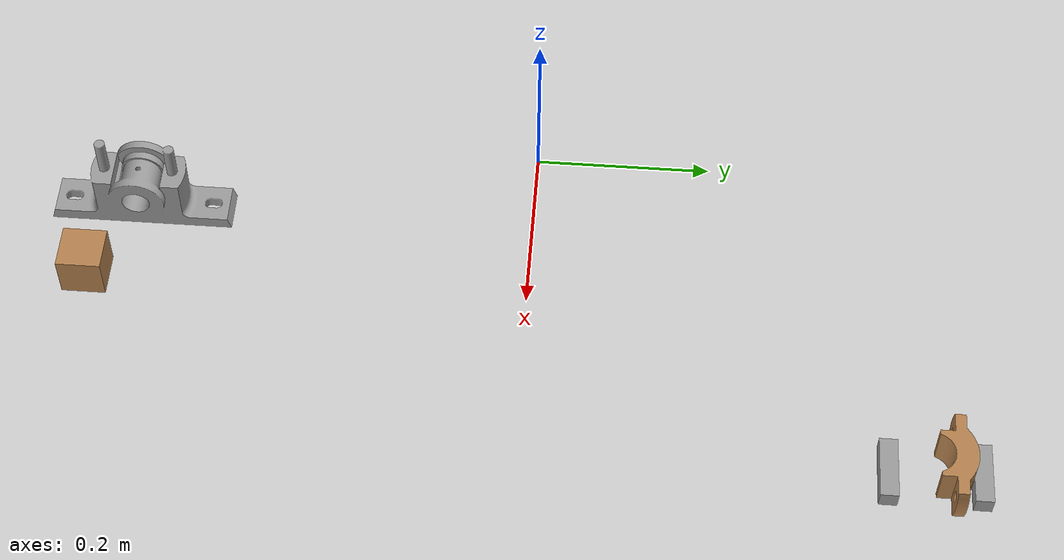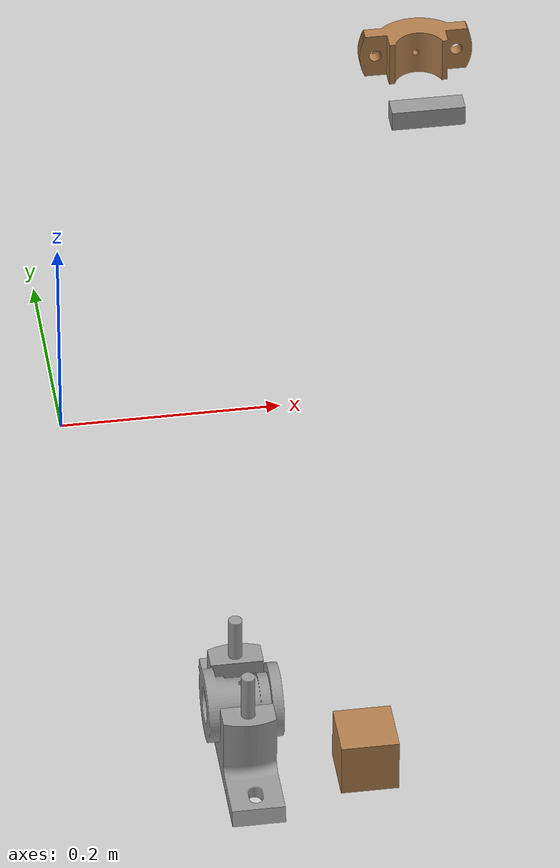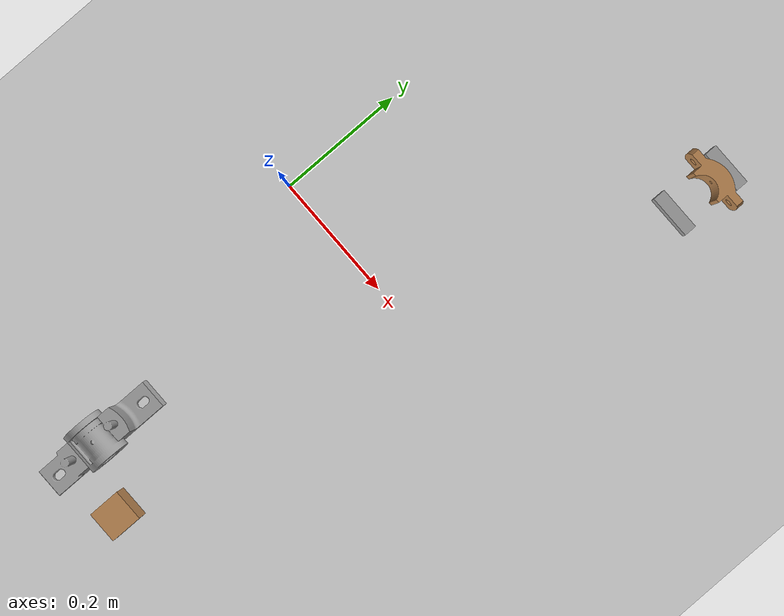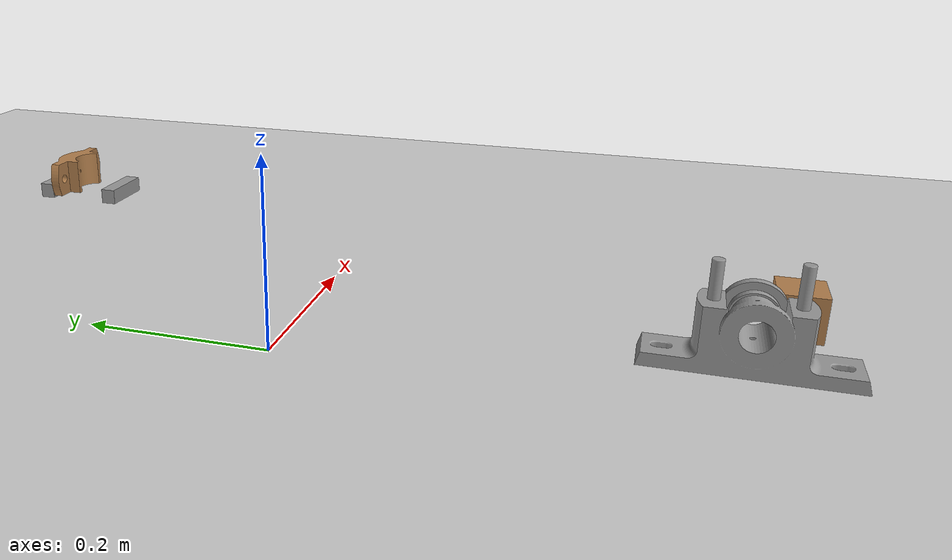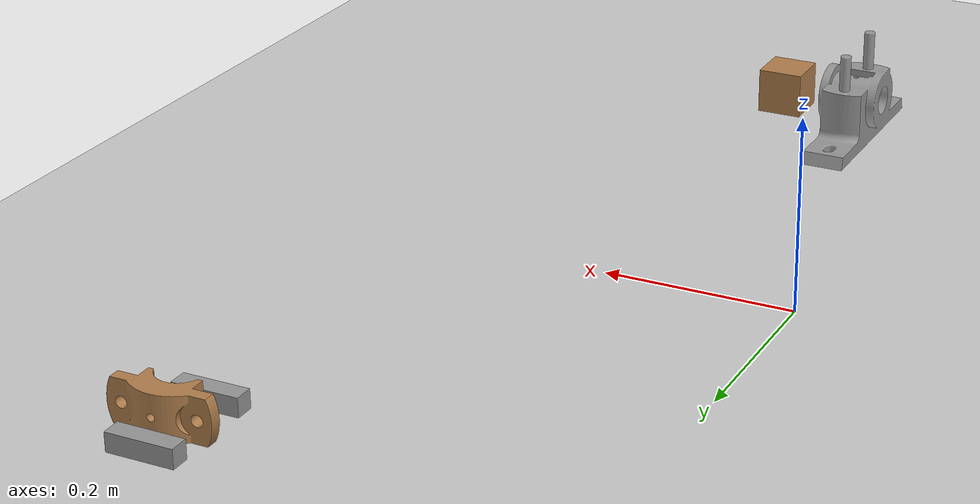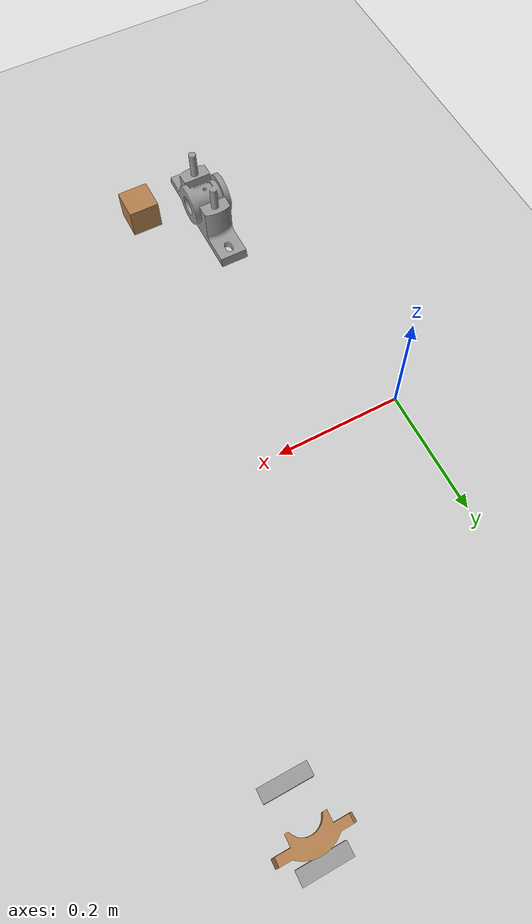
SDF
<?xml version="1.0" ?>

<sdf version="1.6">

  <world name="ur5_cubes">

    <gui>
      <camera name="user_camera">
        <pose>1.4 -2.3 1.4 0.0 0.25 1.9</pose>
      </camera>
    </gui>

    <gravity>0 0 -9.81</gravity>

    <physics name="default_physics" default="0" type="ode">
      <max_step_size>0.001</max_step_size>
      <real_time_factor>1</real_time_factor>
      <real_time_update_rate>1000</real_time_update_rate>
    </physics>

    <scene>
      <ambient>0.4 0.4 0.4 1</ambient>
      <background>0.7 0.7 0.7 1</background>
      <shadows>1</shadows>
    </scene>

    <!-- Light Source -->
    <include>
      <uri>model://sun</uri>
    </include>

    <!-- A ground plane -->
    <include>
      <uri>model://ground_plane</uri>
      <pose>0 0 0 0 0 0</pose>
    </include>

    <!-- A gazebo links attacher -->

   <!-- block -->
    <model name="pillow_block">
      <include>
        <uri>model://pillow_block</uri>
        <pose>0.1 -0.45 0 0 0 0</pose>
      </include>
    </model>

<model name = "stand">

    <link name="stand1">
      <pose>0.4 0.4 0.01 0 0 0</pose>
      <collision name="leg1_collision">
        <geometry>
          <box>
            <size>0.07 0.02 0.02</size>
          </box>
        </geometry>
      </collision>
      <visual name="stand1_visual">
        <geometry>
          <box>
            <size>0.07 0.02 0.02</size>
          </box>
        </geometry>
        <material>
          <script>
            <uri>file://media/materials/scripts/gazebo.material</uri>
            <name>Gazebo/Grey</name>
          </script>
        </material>
      </visual>
    </link>

<link name="stand2">
      <pose>0.4 0.5 0.01 0 0 0</pose>
      <collision name="leg2_collision">
        <geometry>
          <box>
            <size>0.07 0.02 0.02</size>
          </box>
        </geometry>
      </collision>
      <visual name="stand2_visual">
        <geometry>
          <box>
            <size>0.07 0.02 0.02</size>
          </box>
        </geometry>
        <material>
          <script>
            <uri>file://media/materials/scripts/gazebo.material</uri>
            <name>Gazebo/Grey</name>
          </script>
        </material>
      </visual>
    </link>
</model>

    <!-- Cubes -->
    <model name="cube1">
      <pose>0.2 -0.5 0.0 0 0 0</pose>
      <link name="link">
        <pose>0 0 0.025 0 0 0</pose>
        <inertial>
          <mass>0.0565</mass>
          <inertia>
            <ixx>2.3541666666666672e-05</ixx>
            <ixy>0</ixy>
            <ixz>0</ixz>
            <iyy>2.3541666666666672e-05</iyy>
            <iyz>0</iyz>
            <izz>2.3541666666666672e-05</izz>
          </inertia>
        </inertial>
        <collision name="collision">
          <geometry>
            <box>
              <size>0.05 0.05 0.05</size>
            </box>
          </geometry>
          <surface>
            <contact>
              <poissons_ratio>0.347</poissons_ratio>
              <elastic_modulus>8.8e+09</elastic_modulus>
              <ode>
                <kp>100000</kp>
                <kd>1</kd>
                <max_vel>1.0</max_vel>
                <min_depth>0.001</min_depth>
              </ode>
            </contact>
            <friction>
              <torsional>
                <coefficient>1.0</coefficient>
                <use_patch_radius>0</use_patch_radius>
                <surface_radius>0.05</surface_radius>
              </torsional>
            </friction>
          </surface>
        </collision>
        <visual name="visual">
          <geometry>
            <box>
              <size>0.05 0.05 0.05</size>
            </box>
          </geometry>
          <material>
            <script>
              <uri>file://media/materials/scripts/gazebo.material</uri>
              <name>Gazebo/Wood</name>
            </script>
          </material>
        </visual>
      </link>
    </model>

<model name="cap">
<pose>0.4 0.45 0.01 0 0 0</pose>
<static>false</static>
<link name= "top">
<pose> 0.0 0.0 0.022  0 0 0 </pose>
    <inertial>
        <mass>0.0565</mass>

      <inertia>
           <ixx>2.3541666666666672e-05</ixx>
            <ixy>0</ixy>
            <ixz>0</ixz>
            <iyy>2.3541666666666672e-05</iyy>
            <iyz>0</iyz>
            <izz>2.3541666666666672e-05</izz>
          </inertia>
     </inertial>
<collision name= "top collision">
<pose> 0.0 0.0 0.0  0 0 0 </pose>
 <geometry>

    <mesh>
     <uri>model://cap/meshes/plummer_block_cap.obj</uri>
      <scale> 1 1 1 </scale>
   </mesh>

 </geometry>
 <surface>
    <contact>
         <poissons_ratio>0.347</poissons_ratio>
              <elastic_modulus>8.8e+09</elastic_modulus>
            <ode>
              <kp>100000</kp>
                <kd>1</kd>
                <max_vel>1.0</max_vel>
                <min_depth>0.001</min_depth>
            </ode>
      </contact>
          <friction>
            <ode>
              <mu>1.0</mu>
              <mu2>1.0</mu2>
            </ode>
          </friction>
  </surface>
</collision>

<visual name = "visual top">
<pose> 0.0 0.0 0.0  0 0 0 </pose>
  <geometry>
   <mesh>
     <uri>model://cap/meshes/plummer_block_cap.obj</uri>
      <scale> 1 1 1 </scale>
   </mesh>
</geometry>
<material>
          <script>
            <uri>file://media/materials/scripts/gazebo.material</uri>
            <name>Gazebo/Wood</name>
          </script>
        </material>
</visual>
</link>

  </model>

  </world>

</sdf>

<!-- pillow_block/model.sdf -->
<sdf version='1.6'>
  <model name="pillow_block">

<static>true</static>
<link name= "base">
<pose> 0.0 0.0 0.02 0 0 0 </pose>
   <inertial>
        <mass>0.265</mass>
    </inertial>
<collision name= "base collision">
 <geometry>
   <mesh>
     <uri>model://pillow_block/meshes/plummer_block_base.obj</uri>
      <scale> 1 1 1 </scale>
   </mesh>
</geometry>
<surface>
     <contact>
          <poissons_ratio>0.29</poissons_ratio>
            <elastic_modulus>200e+09</elastic_modulus>
            <ode>
              <kp>900000</kp>
              <kd>1</kd>
              <max_vel>1.0</max_vel>
              <min_depth>0.001</min_depth>
            </ode>
      </contact>
          <friction>
            <ode>
              <mu>1.0</mu>
              <mu2>1.0</mu2>
            </ode>
          </friction>
  </surface>

</collision>

<visual name = "visual base">
  <geometry>
   <mesh>
     <uri>model://pillow_block/meshes/plummer_block_base.obj</uri>
      <scale> 1 1 1 </scale>
   </mesh>
</geometry>
<material>
          <script>
            <uri>file://media/materials/scripts/gazebo.material</uri>
            <name>Gazebo/Grey</name>
          </script>
        </material>
</visual>
</link>

<link name="world_fix">
    <parent>world</parent>
    <child>pillow_block::base</child>
</link>

  </model>
</sdf>
